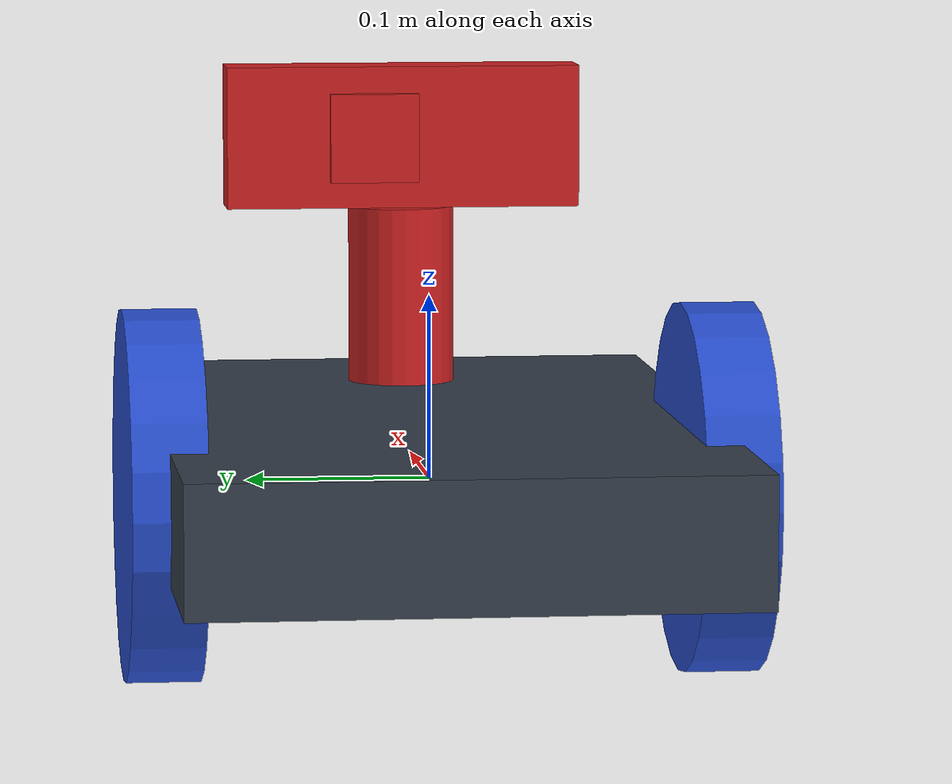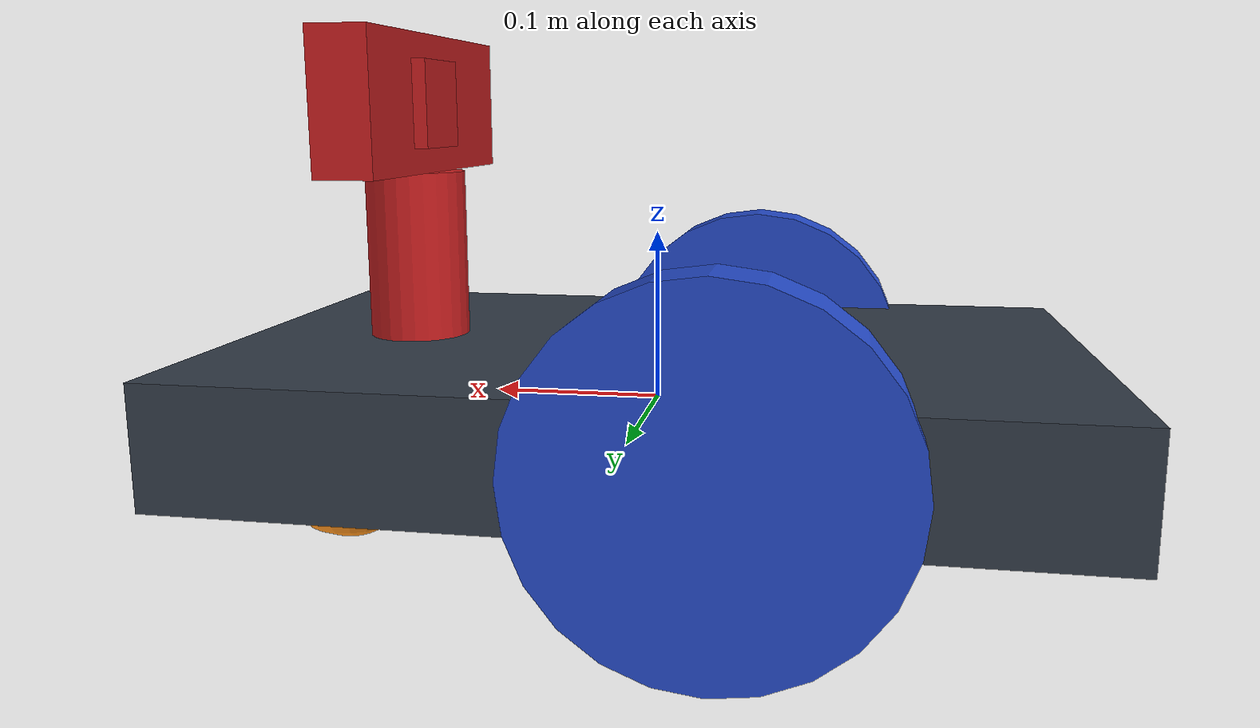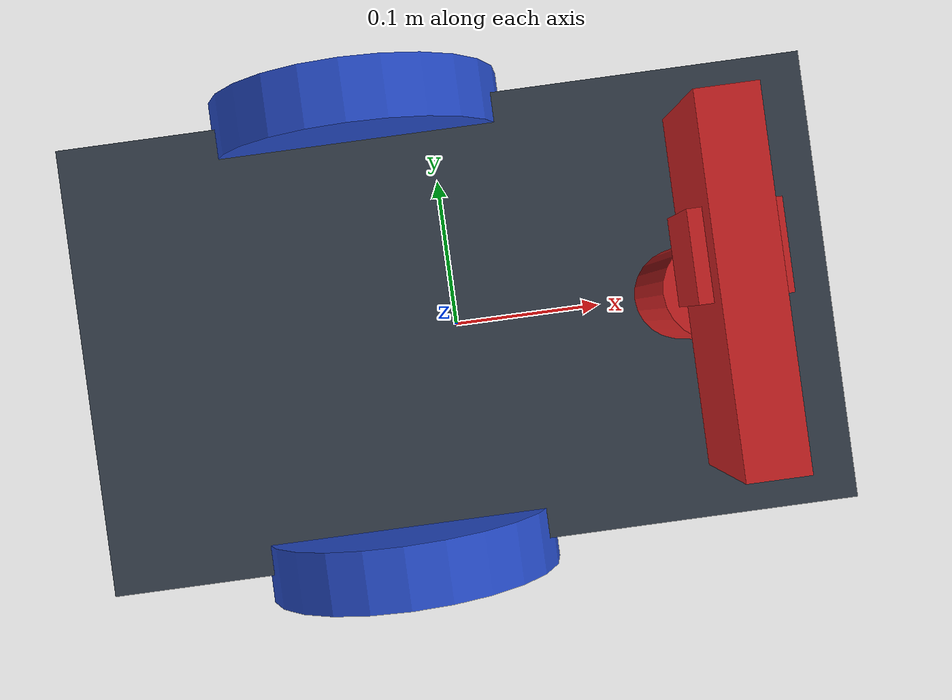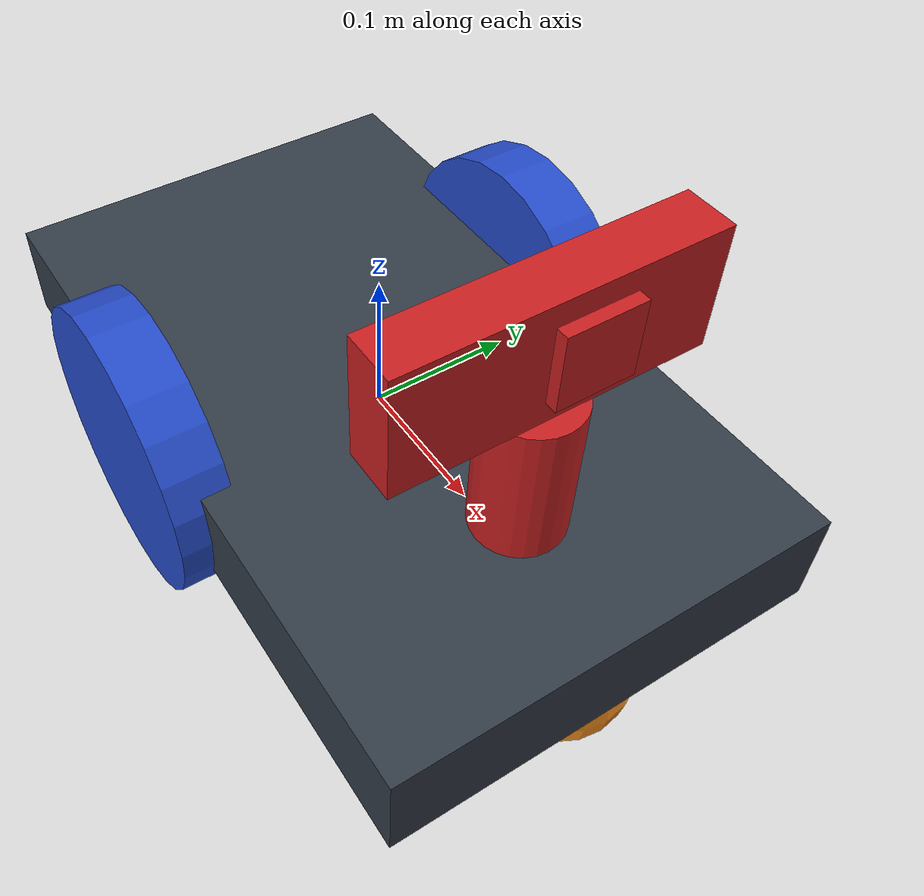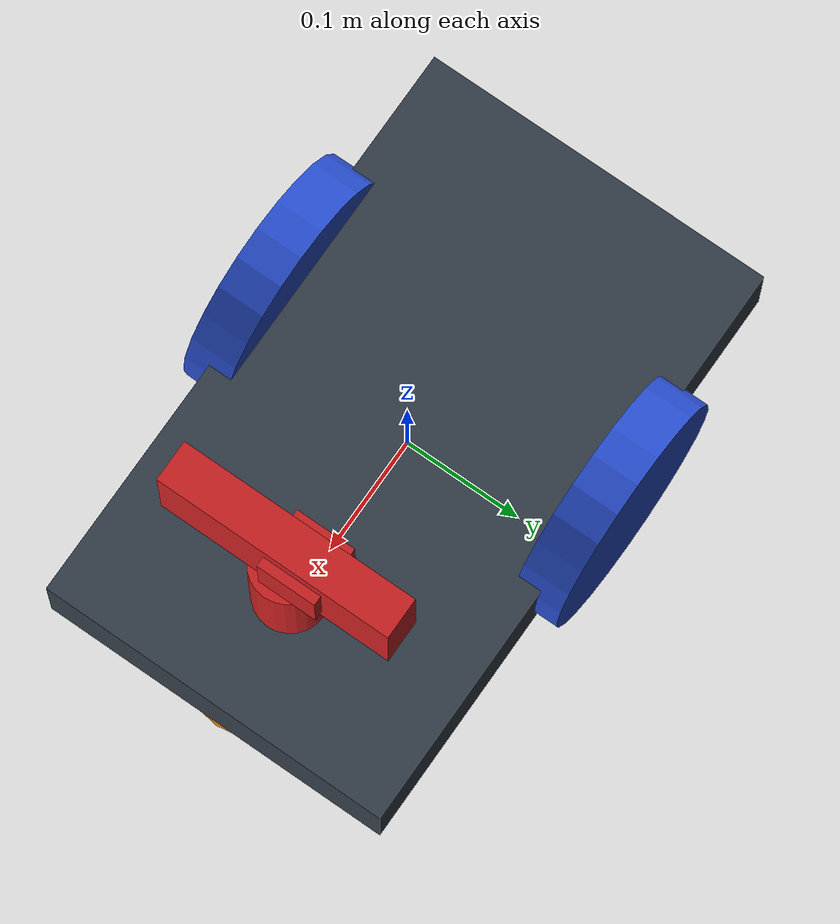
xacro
<?xml version="1.0"?>
<robot name="robot" xmlns:xacro="http://www.ros.org/wiki/xacro">

  <!-- materials -->
 <xacro:include filename="$(find exp_assignment2)/urdf/materials.xacro" />
 <xacro:include filename="$(find exp_assignment2)/urdf/robot.gazebo" />
 <xacro:property name="length_wheel" value="0.04" />
 <xacro:property name="radius_wheel" value="0.10" />
 <xacro:property name="neck_length" value="0.1" />
 <xacro:property name="neck_radius" value="0.03" />
 <xacro:property name="camera_link" value="0.05" /> <!-- Size of square 'camera' box -->

 <xacro:macro name="cylinder_inertia" params="mass r l">
    <inertia ixx="${mass*(3*r*r+l*l)/12}" ixy = "0" ixz = "0"
                iyy="${mass*(3*r*r+l*l)/12}" iyz = "0" izz="${mass*(r*r)/2}" />
 </xacro:macro>

 <xacro:macro name="sphere_inertia" params="mass r">
	<inertia ixx="${(mass*r*r)/4" ixy = "0" ixz = "0" iyy="${(mass*r*r)/4" iyx = "0" iyz  = "0" izz="${(mass*r*r)/2" />
 </xacro:macro>

 <xacro:macro name="box_inertia" params="mass w h d">
    <inertia ixx="${mass*(h*h+d*d)/12}" ixy = "0" ixz = "0"
                iyy="${mass*(w*w+d*d)/12}" iyz = "0" izz="${mass*(w*w+h*h)/12}" />
 </xacro:macro>

    <xacro:macro name="link_wheel" params="name">
        <link name="${name}">
            <inertial>
              <mass value="0.2"/>
              <origin rpy="0 1.5707 1.5707" xyz="0 0 0"/>
	      <xacro:cylinder_inertia mass="0.2" r="${radius_wheel}" l="${length_wheel}" />
            </inertial>
            <collision name="link_right_wheel_collision">
              <origin rpy="0 1.5707 1.5707" xyz="0 0 0"/>
              <geometry>
                <cylinder length="${length_wheel}" radius="${radius_wheel}"/>
              </geometry>
            </collision>
            <visual name="${name}_visual">
              <origin rpy="0 1.5707 1.5707" xyz="0 0 0"/>
              <geometry>
                <cylinder length="${length_wheel}" radius="${radius_wheel}"/>
              </geometry>
            </visual>
        </link>
    </xacro:macro>

    <xacro:macro name="joint_wheel" params="name child origin_xyz">
      <joint name="${name}" type="continuous">
        <origin rpy="0 0 0" xyz="${origin_xyz}"/>
        <child link="${child}"/>
        <parent link="base_link"/>
        <axis rpy="0 0 0" xyz="0 1 0"/>
        <limit effort="10000" velocity="1000"/>
        <joint_properties damping="1.0" friction="1.0"/>
      </joint>
    </xacro:macro>

<!-- _______________base link____________________  -->

  <link name="base_link">
    <!-- pose and inertial -->
    <pose>0 0 0.1 0 0 0</pose>

    <inertial>
      <mass value="5"/>
      <origin rpy="0 0 0" xyz="0 0 0.1"/>
      <inertia ixx="0.0395416666667" ixy="0" ixz="0" iyy="0.106208333333" iyz="0" izz="0.106208333333"/>
    </inertial>

    <collision name="collision_chassis">
      <geometry>
        <box size="0.5 0.3 0.07"/>
      </geometry>
    </collision>

    <visual>
      <origin rpy="0 0 0" xyz="0 0 0"/>
      <geometry>
        <box size="0.5 0.3 0.07"/>
      </geometry>
      <material name="blue"/>
    </visual>

    <!-- caster front -->
    <collision name="caster_front_collision">
      <origin rpy=" 0 0 0" xyz="0.35 0 -0.05"/>
      <geometry>
        <sphere radius="0.05"/>
      </geometry>
      <surface>
        <friction>
          <ode>
            <mu>0</mu>
            <mu2>0</mu2>
            <slip1>1.0</slip1>
            <slip2>1.0</slip2>
          </ode>
        </friction>
      </surface>
    </collision>
    <visual name="caster_front_visual">
      <origin rpy=" 0 0 0" xyz="0.2 0 -0.05"/>
      <geometry>
        <sphere radius="0.05"/>
      </geometry>
    </visual>
    </link>

  <!-- Create wheels -->

  <xacro:link_wheel name="link_right_wheel" />
  <xacro:link_wheel name="link_left_wheel" />
  <xacro:joint_wheel name="joint_right_wheel"  child="link_right_wheel"  origin_xyz="-0.05 0.15 0"  />
  <xacro:joint_wheel name="joint_left_wheel"   child="link_left_wheel"   origin_xyz="-0.05 -0.15 0"  />

<!-- _______________neck definition_______________ -->

  <link name="neck_link">
  	<inertial>
  		<mass value="0.025"/>
  		<origin xyz="0 0 0" rpy="0 0 0" />
		<xacro:cylinder_inertia mass="0.2" r="${neck_radius}" l="${neck_length}" />
  	</inertial>
  	<collision>
  	  <origin xyz="0 0 ${neck_length/2}" rpy="0 0 0"/> <!-- frame moved to the base of the cylinder -->
      <geometry>
        <cylinder radius="${neck_radius}" length="${neck_length}"/>
      </geometry>
  	</collision>
  	<visual>
  	  <origin xyz="0 0 ${neck_length/2}" rpy="0 0 0"/> <!-- frame moved to the base of the cylinder -->
      <geometry>
        <cylinder radius="${neck_radius}" length="${neck_length}"/>
      </geometry>
      <material name="red" />
  	</visual>
  </link>

  <joint name="neck_joint" type="fixed">
  	<axis xyz="0 0 1"/>
  	<limit effort="1000.0" lower="-3.14" upper="3.14" velocity="0.2"/>
  	<origin rpy="0 0 0" xyz="0.15 0 0.035"/> <!-- half the height of the base link -->
  	<parent link="base_link"/>
  	<child link="neck_link"/>
  </joint>

<!-- head definition -->

    <link name="head_link">
  	<inertial>
  		<mass value="0.025"/>
  		<origin xyz="0 0 0" rpy="0 0 0" />
  		<xacro:box_inertia mass="0.025" w="0.2" h="0.08" d="0.034"/>
  	</inertial>
  	<collision>
  	  <origin xyz="0 0 0.04" rpy="0 0 0"/> <!-- frame moved to the base of the head -->
      <geometry>
        <box size="0.034 0.2 0.08"/>
      </geometry>
  	</collision>
  	<visual>
  	  <origin xyz="0 0 0.04" rpy="0 0 0"/> <!-- frame moved to the base of the head -->
      <geometry>
        <box size="0.034 0.2 0.08"/>
      </geometry>
      <material name="red" />
  	</visual>
</link>

  <joint name="head_joint" type="revolute">
  	<axis xyz="0 0 1"/>
  	<limit effort="1000.0" lower="-1.8" upper="1.8" velocity="0.5"/>
  	<origin rpy="0 0 0" xyz="0 0 ${neck_length}"/>
  	<parent link="neck_link"/>
  	<child link="head_link"/>
  </joint>

 <!-- Camera -->
  <link name="camera_link">
    <collision>
      <origin xyz="0 0 0" rpy="0 0 0"/>
      <geometry>
    <box size="${camera_link} ${camera_link} ${camera_link}"/>
      </geometry>
    </collision>

    <visual>
      <origin xyz="0 0 0" rpy="0 0 0"/>
      <geometry>
    <box size="${camera_link} ${camera_link} ${camera_link}"/>
      </geometry>
      <material name="red"/>
    </visual>

    <inertial>
      <mass value="1e-5" />
      <origin xyz="0 0 0" rpy="0 0 0"/>
      <inertia ixx="1e-6" ixy="0" ixz="0" iyy="1e-6" iyz="0" izz="1e-6" />
    </inertial>
  </link>

  <joint name="camera_joint" type="fixed">
    <axis xyz="0 1 0" />
    <origin xyz="0 0.017 0.04" rpy="0 0 0"/>
    <parent link="head_link"/>
    <child link="camera_link"/>
  </joint>

<!-- hears definition -->

<!-- transmission -->

<transmission name="head_joint_trans">
	<type>transmission_interface/SimpleTransmission</type>
	<joint name="head_joint">
		<hardwareInterface>hardware_interface/EffortJointInterface</hardwareInterface>
	</joint>
	<actuator name="motor1">
		<hardwareInterface>hardware_interface/EffortJointInterface</hardwareInterface>
		<mechanicalInterface>1</mechanicalInterface>
	</actuator>
</transmission>

</robot>

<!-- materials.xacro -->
<robot>

  <material name="black">
    <color rgba="0.0 0.0 0.0 1.0"/>
  </material>
  <material name="blue">
    <color rgba="0.203125 0.23828125 0.28515625 1.0"/>
  </material>
  <material name="green">
    <color rgba="0.0 0.8 0.0 1.0"/>
  </material>
  <material name="grey">
    <color rgba="0.2 0.2 0.2 1.0"/>
  </material>
  <material name="orange">
    <color rgba="1.0 0.423529411765 0.0392156862745 1.0"/>
  </material>
  <material name="brown">
    <color rgba="0.870588235294 0.811764705882 0.764705882353 1.0"/>
  </material>
  <material name="red">
    <color rgba="0.80078125 0.12890625 0.1328125 1.0"/>
  </material>
  <material name="white">
    <color rgba="1.0 1.0 1.0 1.0"/>
  </material>

</robot>
